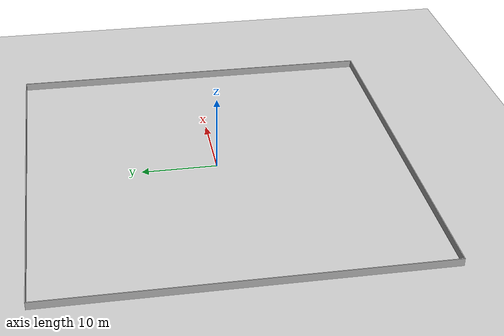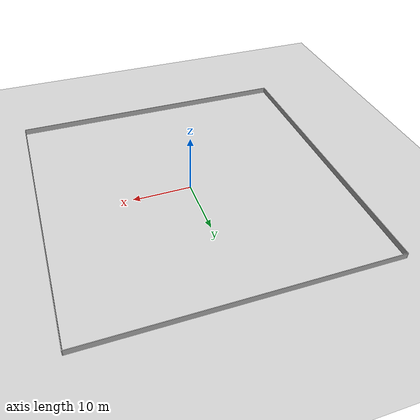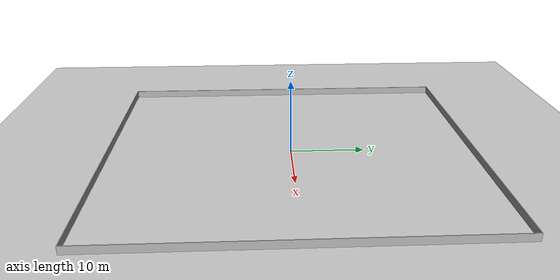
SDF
<?xml version='1.0'?>
<sdf version='1.6'>

	<!--length of boundary-->
	<!--width of boundary-->
	<!--boundary thickness-->
	<!--boundary height-->
	<world name='default'>

        <!-- Ground Plane -->
        <include>
            <uri>model://ground_plane</uri>
        </include>

        <include>
            <uri>model://sun</uri>
        </include>

        <!--start: create boundary-->
        <model name='boundary1'>
            <static>1</static>
            <pose>0 0 0 0 0 0</pose>
            <link name='link'>
                <collision name='collision1'>
                    <pose>-25.05 0 0.0 0 0 0</pose>
                    <geometry>
                        <box>
                            <size>0.1 50.1 1.919</size>
                        </box>
                    </geometry>
                </collision>

                <visual name='visual1'>
                    <pose>-25.05 0 0.0 0 0 0</pose>
                    <geometry>
                        <box>
                            <size>0.1 50.1 1.919</size>
                        </box>
                    </geometry>
                </visual>

                <collision name='collision2'>
                    <pose>25.05 0 0.0 0 0 0</pose>
                    <geometry>
                        <box>
                            <size>0.1 50.1 1.919</size>
                        </box>
                    </geometry>
                </collision>

                <visual name='visual2'>
                    <pose>25.05 0 0.0 0 0 0</pose>
                    <geometry>
                        <box>
                            <size>0.1 50.1 1.919</size>
                        </box>
                    </geometry>
                </visual>

                <collision name='collision3'>
                    <pose>0 -25.0 0.0 0 0 0</pose>
                    <geometry>
                        <box>
                            <size>50.0 0.1 1.919</size>
                        </box>
                    </geometry>
                </collision>

                <visual name='visual3'>
                    <pose>0 -25.0 0.0 0 0 0</pose>
                    <geometry>
                        <box>
                            <size>50.0 0.1 1.919</size>
                        </box>
                    </geometry>
                </visual>

                <collision name='collision4'>
                    <pose>0 25.0 0.0 0 0 0</pose>
                    <geometry>
                        <box>
                            <size>50.0 0.1 1.919</size>
                        </box>
                    </geometry>
                </collision>

                <visual name='visual4'>
                    <pose>0 25.0 0.0 0 0 0</pose>
                    <geometry>
                        <box>
                            <size>50.0 0.1 1.919</size>
                        </box>
                    </geometry>
                </visual>
            </link>
        </model>

	</world>
</sdf>
